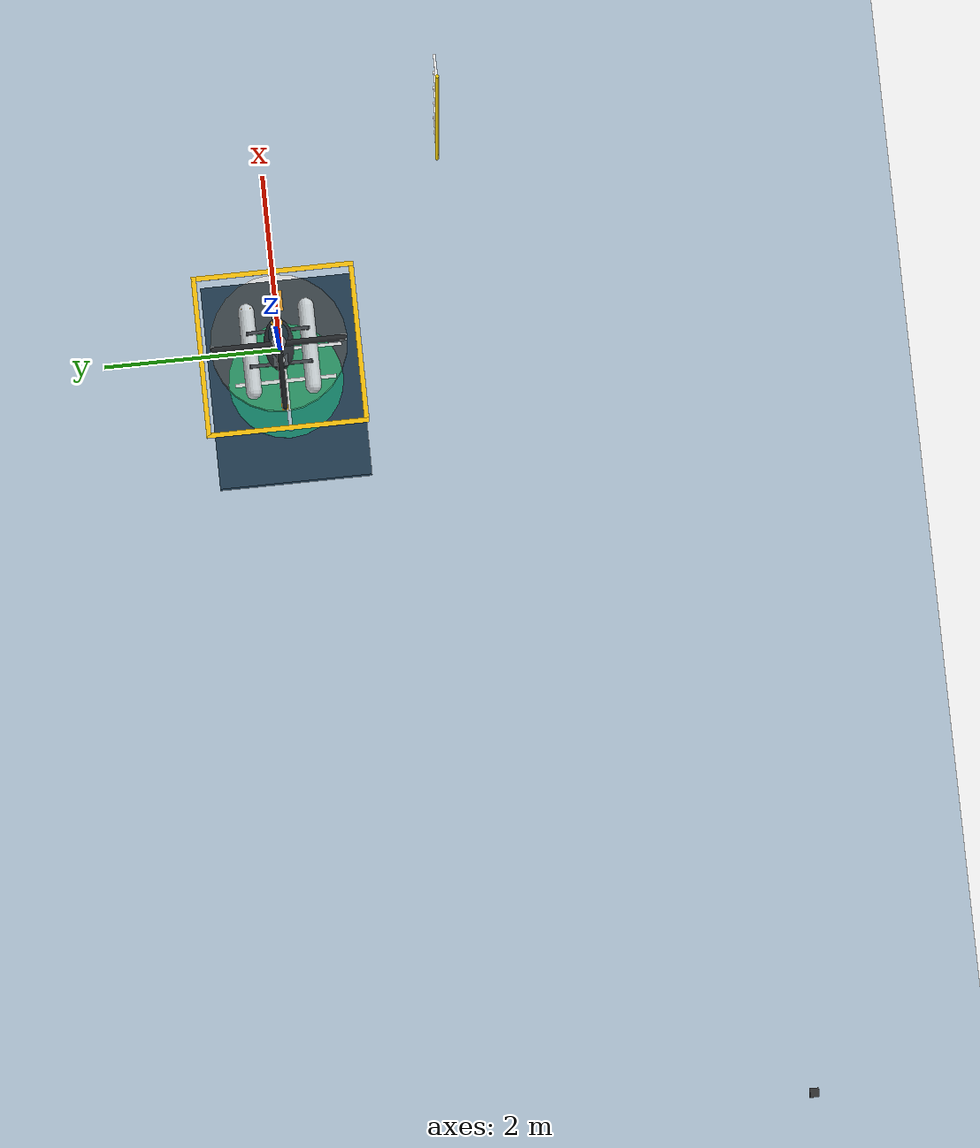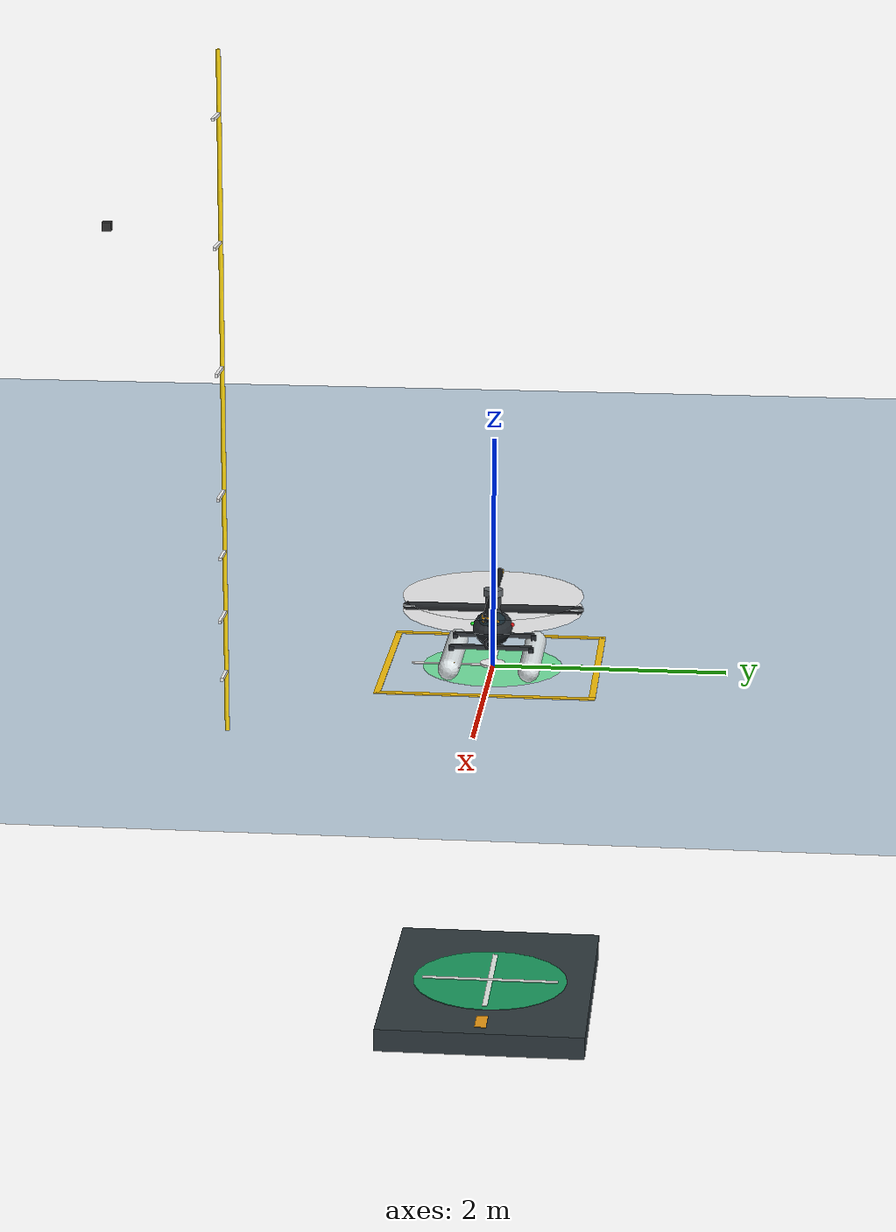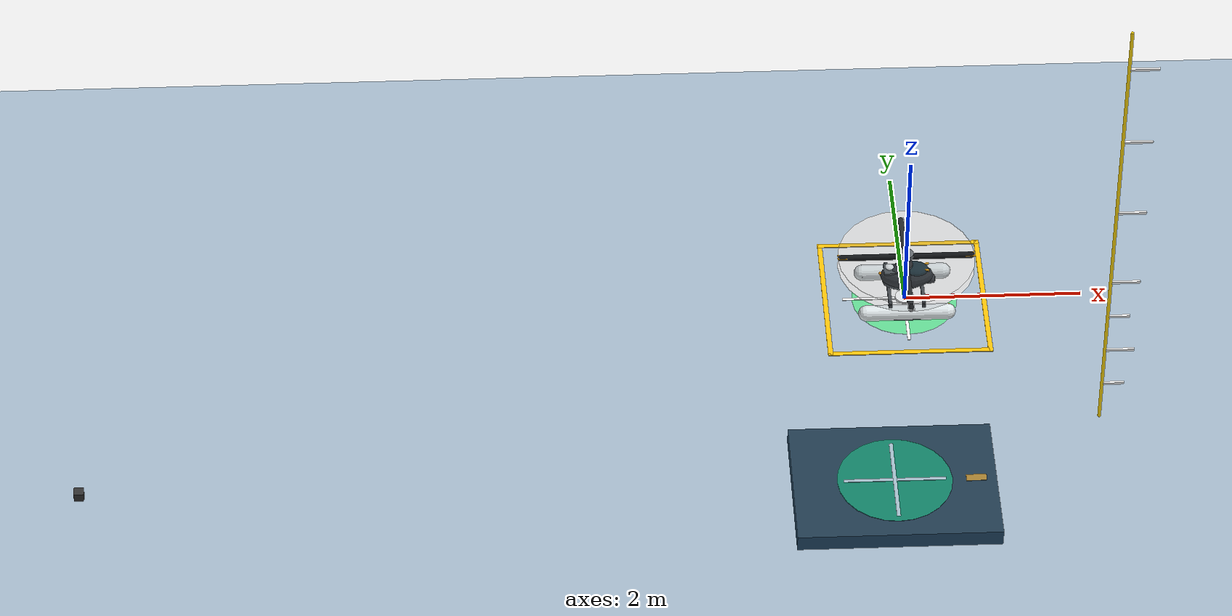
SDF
<?xml version="1.0" ?>
<sdf version="1.9">
  <world name="static_water_takeoff">
    <physics name="1ms" type="ignored">
      <max_step_size>0.001</max_step_size>
      <real_time_factor>1.0</real_time_factor>
    </physics>
    <gravity>0 0 -9.8</gravity>
    <plugin filename="gz-sim-physics-system" name="gz::sim::systems::Physics"/>
    <plugin filename="gz-sim-user-commands-system" name="gz::sim::systems::UserCommands"/>
    <plugin filename="gz-sim-scene-broadcaster-system" name="gz::sim::systems::SceneBroadcaster"/>
    <plugin filename="gz-sim-sensors-system" name="gz::sim::systems::Sensors">
      <render_engine>ogre2</render_engine>
    </plugin>
    <plugin filename="gz-sim-contact-system" name="gz::sim::systems::Contact"/>
    <plugin filename="gz-sim-apply-link-wrench-system" name="gz::sim::systems::ApplyLinkWrench"/>

    <light type="directional" name="sun">
      <pose>0 0 10 0 0 0</pose>
      <cast_shadows>true</cast_shadows>
      <diffuse>0.8 0.8 0.8 1</diffuse>
      <specular>0.2 0.2 0.2 1</specular>
      <direction>-0.5 0.1 -0.9</direction>
    </light>

    <!-- A static visual and collision plane, deliberately not a fluid simulation. -->
    <model name="static_water_surface">
      <static>true</static>
      <link name="link">
        <collision name="water_contact_plane">
          <geometry><plane><normal>0 0 1</normal><size>100 100</size></plane></geometry>
          <surface><friction><ode><mu>0.45</mu><mu2>0.45</mu2></ode></friction></surface>
        </collision>
        <visual name="water_visual">
          <geometry><plane><normal>0 0 1</normal><size>100 100</size></plane></geometry>
          <material>
            <ambient>0.02 0.16 0.28 1</ambient>
            <diffuse>0.04 0.30 0.52 1</diffuse>
            <specular>0.45 0.55 0.65 1</specular>
          </material>
        </visual>
      </link>
    </model>

    <model name="landing_target_visual">
      <static>false</static>
      <pose>0 0 0.004 0 0 0</pose>
      <link name="link">
        <gravity>false</gravity>
        <kinematic>true</kinematic>
        <inertial>
          <mass>0.01</mass>
          <inertia>
            <ixx>0.001</ixx><iyy>0.001</iyy><izz>0.001</izz>
          </inertia>
        </inertial>
        <visual name="target_disc">
          <geometry><cylinder><radius>0.60</radius><length>0.006</length></cylinder></geometry>
          <material>
            <ambient>0.0 0.65 0.25 0.55</ambient>
            <diffuse>0.0 0.85 0.35 0.55</diffuse>
          </material>
          <transparency>0.45</transparency>
        </visual>
        <visual name="target_cross_x">
          <pose>0 0 0.006 0 0 0</pose>
          <geometry><box><size>1.40 0.035 0.008</size></box></geometry>
          <material><diffuse>1.0 1.0 1.0 0.9</diffuse></material>
        </visual>
        <visual name="target_cross_y">
          <pose>0 0 0.007 0 0 0</pose>
          <geometry><box><size>0.035 1.40 0.008</size></box></geometry>
          <material><diffuse>1.0 1.0 1.0 0.9</diffuse></material>
        </visual>
      </link>
      <plugin filename="libMovingLandingTarget.so"
              name="coaxial_uav::MovingLandingTarget">
        <role>marker</role>
        <publish_status>false</publish_status>
        <platform_top_offset_m>0.20</platform_top_offset_m>
      </plugin>
    </model>

    <model name="landing_target_platform">
      <static>false</static>
      <pose>0 0 -3 0 0 0</pose>
      <link name="deck_link">
        <gravity>false</gravity>
        <kinematic>true</kinematic>
        <inertial>
          <mass>20.0</mass>
          <inertia>
            <ixx>5.47</ixx><iyy>9.67</iyy><izz>14.60</izz>
          </inertia>
        </inertial>
        <collision name="deck_collision">
          <geometry><box><size>2.40 1.80 0.20</size></box></geometry>
          <surface>
            <friction>
              <ode><mu>1.2</mu><mu2>1.2</mu2></ode>
            </friction>
            <contact><ode><kp>1000000</kp><kd>100</kd></ode></contact>
          </surface>
        </collision>
        <visual name="deck_body">
          <geometry><box><size>2.40 1.80 0.20</size></box></geometry>
          <material>
            <ambient>0.12 0.15 0.17 1</ambient>
            <diffuse>0.19 0.23 0.25 1</diffuse>
            <specular>0.10 0.10 0.10 1</specular>
          </material>
        </visual>
        <visual name="landing_pad">
          <pose>0 0 0.103 0 0 0</pose>
          <geometry><cylinder><radius>0.68</radius><length>0.006</length></cylinder></geometry>
          <material>
            <ambient>0.07 0.43 0.27 1</ambient>
            <diffuse>0.10 0.62 0.38 1</diffuse>
          </material>
        </visual>
        <visual name="deck_center_x">
          <pose>0 0 0.108 0 0 0</pose>
          <geometry><box><size>1.20 0.045 0.008</size></box></geometry>
          <material><diffuse>0.94 0.96 0.94 1</diffuse></material>
        </visual>
        <visual name="deck_center_y">
          <pose>0 0 0.109 0 0 0</pose>
          <geometry><box><size>0.045 1.20 0.008</size></box></geometry>
          <material><diffuse>0.94 0.96 0.94 1</diffuse></material>
        </visual>
        <visual name="bow_marker">
          <pose>0.96 0 0.108 0 0 0</pose>
          <geometry><box><size>0.24 0.10 0.008</size></box></geometry>
          <material><diffuse>0.95 0.62 0.08 1</diffuse></material>
        </visual>
      </link>
      <plugin filename="libMovingLandingTarget.so"
              name="coaxial_uav::MovingLandingTarget">
        <role>platform</role>
        <publish_status>true</publish_status>
        <platform_available>true</platform_available>
        <platform_top_offset_m>0.20</platform_top_offset_m>
        <platform_hidden_z_m>-3.0</platform_hidden_z_m>
        <platform_half_length_m>1.20</platform_half_length_m>
        <platform_half_width_m>0.90</platform_half_width_m>
        <platform_thickness_m>0.20</platform_thickness_m>
        <platform_edge_margin_m>0.03</platform_edge_margin_m>
        <contact_min_clearance_m>-0.08</contact_min_clearance_m>
        <contact_max_clearance_m>0.05</contact_max_clearance_m>
        <initial_overlap_min_clearance_m>-0.08</initial_overlap_min_clearance_m>
      </plugin>
    </model>

    <!-- Visual-only world origin reference; it has no collision or contact effect. -->
    <model name="world_origin_marker">
      <static>true</static>
      <pose>0 0 0.014 0 0 0</pose>
      <link name="link">
        <visual name="origin_frame_north">
          <pose>0 0.90 0 0 0 0</pose>
          <geometry><box><size>1.85 0.055 0.010</size></box></geometry>
          <material><ambient>1.0 0.68 0.02 1</ambient><diffuse>1.0 0.78 0.04 1</diffuse><emissive>0.18 0.08 0 1</emissive></material>
        </visual>
        <visual name="origin_frame_south">
          <pose>0 -0.90 0 0 0 0</pose>
          <geometry><box><size>1.85 0.055 0.010</size></box></geometry>
          <material><ambient>1.0 0.68 0.02 1</ambient><diffuse>1.0 0.78 0.04 1</diffuse><emissive>0.18 0.08 0 1</emissive></material>
        </visual>
        <visual name="origin_frame_east">
          <pose>0.90 0 0 0 0 0</pose>
          <geometry><box><size>0.055 1.85 0.010</size></box></geometry>
          <material><ambient>1.0 0.68 0.02 1</ambient><diffuse>1.0 0.78 0.04 1</diffuse><emissive>0.18 0.08 0 1</emissive></material>
        </visual>
        <visual name="origin_frame_west">
          <pose>-0.90 0 0 0 0 0</pose>
          <geometry><box><size>0.055 1.85 0.010</size></box></geometry>
          <material><ambient>1.0 0.68 0.02 1</ambient><diffuse>1.0 0.78 0.04 1</diffuse><emissive>0.18 0.08 0 1</emissive></material>
        </visual>
        <visual name="origin_x_axis">
          <pose>0.48 0 0.004 0 0 0</pose>
          <geometry><box><size>0.96 0.045 0.014</size></box></geometry>
          <material><ambient>0.80 0.02 0.02 1</ambient><diffuse>1.0 0.04 0.04 1</diffuse><emissive>0.28 0 0 1</emissive></material>
        </visual>
        <visual name="origin_y_axis">
          <pose>0 0.48 0.005 0 0 0</pose>
          <geometry><box><size>0.045 0.96 0.014</size></box></geometry>
          <material><ambient>0.02 0.65 0.06 1</ambient><diffuse>0.03 1.0 0.10 1</diffuse><emissive>0 0.24 0.02 1</emissive></material>
        </visual>
        <visual name="origin_center">
          <pose>0 0 0.010 0 0 0</pose>
          <geometry><cylinder><radius>0.105</radius><length>0.022</length></cylinder></geometry>
          <material><ambient>0.95 0.95 0.95 1</ambient><diffuse>1.0 1.0 1.0 1</diffuse><emissive>0.20 0.20 0.20 1</emissive></material>
        </visual>
      </link>
    </model>

    <model name="height_reference_visual">
      <static>true</static>
      <pose>2.0 -2.0 0 0 0 0</pose>
      <link name="link">
        <visual name="pole">
          <pose>0 0 2.75 0 0 0</pose>
          <geometry><cylinder><radius>0.018</radius><length>5.50</length></cylinder></geometry>
          <material><diffuse>1.0 0.85 0.05 1</diffuse></material>
        </visual>
        <visual name="tick_0_5m">
          <pose>0.12 0 0.5 0 0 0</pose>
          <geometry><box><size>0.24 0.025 0.025</size></box></geometry>
          <material><diffuse>1.0 1.0 1.0 1</diffuse></material>
        </visual>
        <visual name="tick_1_0m">
          <pose>0.16 0 1.0 0 0 0</pose>
          <geometry><box><size>0.32 0.025 0.025</size></box></geometry>
          <material><diffuse>1.0 1.0 1.0 1</diffuse></material>
        </visual>
        <visual name="tick_1_5m">
          <pose>0.12 0 1.5 0 0 0</pose>
          <geometry><box><size>0.24 0.025 0.025</size></box></geometry>
          <material><diffuse>1.0 1.0 1.0 1</diffuse></material>
        </visual>
        <visual name="tick_2_0m">
          <pose>0.16 0 2.0 0 0 0</pose>
          <geometry><box><size>0.32 0.025 0.025</size></box></geometry>
          <material><diffuse>1.0 1.0 1.0 1</diffuse></material>
        </visual>
        <visual name="tick_3_0m">
          <pose>0.16 0 3.0 0 0 0</pose>
          <geometry><box><size>0.32 0.025 0.025</size></box></geometry>
          <material><diffuse>1.0 1.0 1.0 1</diffuse></material>
        </visual>
        <visual name="tick_4_0m">
          <pose>0.16 0 4.0 0 0 0</pose>
          <geometry><box><size>0.32 0.025 0.025</size></box></geometry>
          <material><diffuse>1.0 1.0 1.0 1</diffuse></material>
        </visual>
        <visual name="tick_5_0m">
          <pose>0.16 0 5.0 0 0 0</pose>
          <geometry><box><size>0.32 0.025 0.025</size></box></geometry>
          <material><diffuse>1.0 1.0 1.0 1</diffuse></material>
        </visual>
      </link>
    </model>

    <include>
      <uri>model://coaxial_uav</uri>
      <pose>0 0 0.34 0 0 0</pose>
      <plugin filename="gz-sim-pose-publisher-system" name="gz::sim::systems::PosePublisher">
        <publish_model_pose>true</publish_model_pose>
        <publish_link_pose>false</publish_link_pose>
        <use_pose_vector_msg>false</use_pose_vector_msg>
        <static_publisher>false</static_publisher>
        <update_frequency>50</update_frequency>
      </plugin>
      <plugin filename="gz-sim-joint-state-publisher-system" name="gz::sim::systems::JointStatePublisher"/>
      <plugin filename="libCoaxialPidController.so" name="coaxial_uav::CoaxialPidController">
        <enabled>false</enabled>
        <link_name>base_link</link_name>
        <upper_joint_name>upper_rotor_joint</upper_joint_name>
        <lower_joint_name>lower_rotor_joint</lower_joint_name>
        <mass_kg>8.2</mass_kg>
        <gravity_m_s2>9.8</gravity_m_s2>
        <thrust_coeff>2.1610671e-3</thrust_coeff>
        <rotor_interference_enabled>true</rotor_interference_enabled>
        <coaxial_max_thrust_loss>0.06</coaxial_max_thrust_loss>
        <target_z_m>0.8</target_z_m>
        <max_omega_rad_s>150.0</max_omega_rad_s>
        <attitude_setpoint_rate_limit_rad_s>0.75</attitude_setpoint_rate_limit_rad_s>
        <velocity_control_enabled>false</velocity_control_enabled>
        <target_vx_m_s>0.0</target_vx_m_s>
        <target_vy_m_s>0.0</target_vy_m_s>
        <velocity_tilt_limit_rad>0.261799</velocity_tilt_limit_rad>
        <velocity_accel_limit_m_s2>2.2</velocity_accel_limit_m_s2>
        <velocity_x_kp>2.8</velocity_x_kp>
        <velocity_x_ki>0.15</velocity_x_ki>
        <velocity_x_limit>2.2</velocity_x_limit>
        <velocity_x_integral_limit>1.0</velocity_x_integral_limit>
        <velocity_y_kp>2.8</velocity_y_kp>
        <velocity_y_ki>0.15</velocity_y_ki>
        <velocity_y_limit>2.2</velocity_y_limit>
        <velocity_y_integral_limit>1.0</velocity_y_integral_limit>
        <position_control_enabled>false</position_control_enabled>
        <target_x_m>0.0</target_x_m>
        <target_y_m>0.0</target_y_m>
        <position_velocity_limit_m_s>2.5</position_velocity_limit_m_s>
        <position_x_kp>2.5</position_x_kp>
        <position_x_ki>0.0</position_x_ki>
        <position_x_kd>0.95</position_x_kd>
        <position_x_limit>2.5</position_x_limit>
        <position_x_integral_limit>2.0</position_x_integral_limit>
        <position_y_kp>2.5</position_y_kp>
        <position_y_ki>0.0</position_y_ki>
        <position_y_kd>0.95</position_y_kd>
        <position_y_limit>2.5</position_y_limit>
        <position_y_integral_limit>2.0</position_y_integral_limit>
        <height_kp>45.0</height_kp>
        <height_ki>0.0</height_ki>
        <height_kd>35.0</height_kd>
        <height_limit>30.0</height_limit>
        <height_integral_limit>0.5</height_integral_limit>
        <roll_kp>193.3</roll_kp>
        <roll_kd>8.61</roll_kd>
        <roll_limit>2.5</roll_limit>
        <pitch_kp>351.3</pitch_kp>
        <pitch_kd>15.65</pitch_kd>
        <pitch_limit>2.7</pitch_limit>
        <yaw_kp>296.1</yaw_kp>
        <yaw_kd>13.19</yaw_kd>
        <yaw_limit>0.7</yaw_limit>
        <yaw_large_signal_kp>20.0</yaw_large_signal_kp>
        <yaw_large_signal_kd>3.0</yaw_large_signal_kd>
        <yaw_schedule_start_rad>0.02</yaw_schedule_start_rad>
        <yaw_schedule_end_rad>0.08</yaw_schedule_end_rad>
        <nonidealities_enabled>false</nonidealities_enabled>
        <attitude_noise_std_rad>0.000349066</attitude_noise_std_rad>
        <gyro_noise_std_rad_s>0.00174533</gyro_noise_std_rad_s>
        <attitude_bias_std_rad>0.000872665</attitude_bias_std_rad>
        <gyro_bias_std_rad_s>0.000872665</gyro_bias_std_rad_s>
        <position_noise_std_m>0.003</position_noise_std_m>
        <velocity_noise_std_m_s>0.01</velocity_noise_std_m_s>
        <control_delay_s>0.015</control_delay_s>
        <motor_time_constant_s>0.08</motor_time_constant_s>
        <motor_rate_limit_rad_s2>500.0</motor_rate_limit_rad_s2>
        <motor_effectiveness>0.98</motor_effectiveness>
        <nonidealities_seed>20260726</nonidealities_seed>
      </plugin>
      <plugin filename="libNearSurfaceDisturbance.so" name="coaxial_uav::NearSurfaceDisturbance">
        <enabled>false</enabled>
        <preset>off</preset>
        <link_name>base_link</link_name>
        <upper_joint_name>upper_rotor_joint</upper_joint_name>
        <lower_joint_name>lower_rotor_joint</lower_joint_name>
        <water_z_m>0.0</water_z_m>
        <rotor_radius_m>0.775</rotor_radius_m>
        <rotor_plane_offset_m>0.235</rotor_plane_offset_m>
        <thrust_coeff>2.1610671e-3</thrust_coeff>
        <full_effect_height_ratio>0.30</full_effect_height_ratio>
        <zero_effect_height_ratio>1.50</zero_effect_height_ratio>
        <minimum_rotor_omega_rad_s>20.0</minimum_rotor_omega_rad_s>
      </plugin>
      <plugin filename="libAerodynamicEnvironment.so" name="coaxial_uav::AerodynamicEnvironment">
        <enabled>false</enabled>
        <link_name>base_link</link_name>
        <upper_joint_name>upper_rotor_joint</upper_joint_name>
        <lower_joint_name>lower_rotor_joint</lower_joint_name>
        <air_density_kg_m3>1.225</air_density_kg_m3>
        <drag_area_x_m2>0.12</drag_area_x_m2>
        <drag_area_y_m2>0.18</drag_area_y_m2>
        <drag_area_z_m2>0.10</drag_area_z_m2>
        <angular_damping_roll_nm_s>0.12</angular_damping_roll_nm_s>
        <angular_damping_pitch_nm_s>0.18</angular_damping_pitch_nm_s>
        <angular_damping_yaw_nm_s>0.10</angular_damping_yaw_nm_s>
        <angular_damping_roll_quadratic>0.03</angular_damping_roll_quadratic>
        <angular_damping_pitch_quadratic>0.04</angular_damping_pitch_quadratic>
        <angular_damping_yaw_quadratic>0.02</angular_damping_yaw_quadratic>
        <nominal_mass_kg>8.2</nominal_mass_kg>
        <nominal_ixx>0.19588</nominal_ixx>
        <nominal_iyy>0.35588</nominal_iyy>
        <nominal_izz>0.30</nominal_izz>
        <thrust_coeff>2.1610671e-3</thrust_coeff>
      </plugin>
      <plugin filename="libCoaxialWaterInteraction.so" name="coaxial_uav::CoaxialWaterInteraction">
        <rotor_interference_enabled>true</rotor_interference_enabled>
        <hydrodynamics_enabled>true</hydrodynamics_enabled>
        <vehicle_mass_kg>8.2</vehicle_mass_kg>
        <link_name>base_link</link_name>
        <upper_joint_name>upper_rotor_joint</upper_joint_name>
        <lower_joint_name>lower_rotor_joint</lower_joint_name>
        <thrust_coeff>2.1610671e-3</thrust_coeff>
        <moment_constant>0.06478</moment_constant>
        <minimum_rotor_omega_rad_s>20.0</minimum_rotor_omega_rad_s>
        <coaxial_max_thrust_loss>0.06</coaxial_max_thrust_loss>
        <coaxial_inflow_time_constant_s>0.12</coaxial_inflow_time_constant_s>
        <water_density_kg_m3>997.0</water_density_kg_m3>
        <water_level_z_m>0.0</water_level_z_m>
        <float_virtual_draft_m>0.055</float_virtual_draft_m>
        <float_radius_m>0.09</float_radius_m>
        <float_length_m>1.10</float_length_m>
        <float_lateral_offset_m>0.34</float_lateral_offset_m>
        <float_vertical_offset_m>-0.24</float_vertical_offset_m>
        <float_count>2</float_count>
        <water_linear_drag_x_n_s_m>4.0</water_linear_drag_x_n_s_m>
        <water_linear_drag_y_n_s_m>35.0</water_linear_drag_y_n_s_m>
        <water_linear_drag_z_n_s_m>80.0</water_linear_drag_z_n_s_m>
        <water_quadratic_drag_x>0.25</water_quadratic_drag_x>
        <water_quadratic_drag_y>1.0</water_quadratic_drag_y>
        <water_quadratic_drag_z>1.1</water_quadratic_drag_z>
        <water_slamming_gain_n_s_m>35.0</water_slamming_gain_n_s_m>
        <max_hydrodynamic_force_n>220.0</max_hydrodynamic_force_n>
      </plugin>
      <plugin filename="gz-sim-multicopter-motor-model-system" name="gz::sim::systems::MulticopterMotorModel">
        <robotNamespace>coaxial_uav</robotNamespace>
        <jointName>upper_rotor_joint</jointName>
        <linkName>upper_rotor_link</linkName>
        <turningDirection>cw</turningDirection>
        <timeConstantUp>0.075</timeConstantUp>
        <timeConstantDown>0.075</timeConstantDown>
        <maxRotVelocity>167.0</maxRotVelocity>
        <motorConstant>2.1610671e-3</motorConstant>
        <momentConstant>0.06478</momentConstant>
        <commandSubTopic>gazebo/command/motor_speed</commandSubTopic>
        <actuator_number>0</actuator_number>
        <rotorDragCoefficient>0.0</rotorDragCoefficient>
        <rollingMomentCoefficient>0.0</rollingMomentCoefficient>
        <motorSpeedPubTopic>motor_speed/upper</motorSpeedPubTopic>
        <rotorVelocitySlowdownSim>1</rotorVelocitySlowdownSim>
        <motorType>velocity</motorType>
      </plugin>
      <plugin filename="gz-sim-multicopter-motor-model-system" name="gz::sim::systems::MulticopterMotorModel">
        <robotNamespace>coaxial_uav</robotNamespace>
        <jointName>lower_rotor_joint</jointName>
        <linkName>lower_rotor_link</linkName>
        <turningDirection>ccw</turningDirection>
        <timeConstantUp>0.075</timeConstantUp>
        <timeConstantDown>0.075</timeConstantDown>
        <maxRotVelocity>167.0</maxRotVelocity>
        <motorConstant>2.1610671e-3</motorConstant>
        <momentConstant>0.06478</momentConstant>
        <commandSubTopic>gazebo/command/motor_speed</commandSubTopic>
        <actuator_number>1</actuator_number>
        <rotorDragCoefficient>0.0</rotorDragCoefficient>
        <rollingMomentCoefficient>0.0</rollingMomentCoefficient>
        <motorSpeedPubTopic>motor_speed/lower</motorSpeedPubTopic>
        <rotorVelocitySlowdownSim>1</rotorVelocitySlowdownSim>
        <motorType>velocity</motorType>
      </plugin>
    </include>
  <!-- VIDEO_ONLY_BLOCK_BEGIN: camera recorder; do not edit beyond this marker -->
    <!-- 录像相机：固定在起降区（约 -5,-5）一侧，俯视水面着陆区 -->
    <model name="recording_camera">
      <static>true</static>
      <pose>-9 -5 2.2 0 0 0</pose>
      <link name="link">
        <visual name="cam_box">
          <geometry><box><size>0.1 0.1 0.1</size></box></geometry>
          <material><diffuse>0.2 0.2 0.2 1</diffuse></material>
        </visual>
        <sensor type="camera" name="cam">
          <always_on>1</always_on>
          <update_rate>15</update_rate>
          <visualize>false</visualize>
          <topic>recording_camera/image</topic>
          <camera>
            <horizontal_fov>1.4</horizontal_fov>
            <image><width>640</width><height>480</height></image>
            <clip><near>0.1</near><far>100</far></clip>
          </camera>
          <plugin filename="gz-sim-camera-video-recorder-system" name="gz::sim::systems::CameraVideoRecorder">
            <service>recording_camera/record_video</service>
            <bitrate>2000000</bitrate>
            <fps>12</fps>
          </plugin>
        </sensor>
      </link>
    </model>
  <!-- VIDEO_ONLY_BLOCK_END -->
  </world>
</sdf>

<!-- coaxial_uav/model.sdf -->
<sdf version="1.9">
  <model name="coaxial_uav">
    <self_collide>false</self_collide>

    <link name="base_link">
      <inertial>
        <mass>8.1</mass>
        <inertia>
          <ixx>0.18</ixx>
          <iyy>0.34</iyy>
          <izz>0.28</izz>
          <ixy>0</ixy>
          <ixz>0</ixz>
          <iyz>0</iyz>
        </inertia>
      </inertial>

      <collision name="fuselage_collision">
        <geometry>
          <box><size>0.50 0.28 0.18</size></box>
        </geometry>
      </collision>
      <!-- Visual-only airframe. Collision and inertia stay deliberately simple. -->
      <visual name="fuselage_shell">
        <pose>0.015 0 0.015 0 0 0</pose>
        <geometry><ellipsoid><radii>0.30 0.17 0.13</radii></ellipsoid></geometry>
        <material>
          <ambient>0.055 0.065 0.075 1</ambient>
          <diffuse>0.10 0.12 0.14 1</diffuse>
          <specular>0.32 0.34 0.36 1</specular>
        </material>
      </visual>
      <visual name="lower_equipment_pod">
        <pose>-0.025 0 -0.065 0 0 0</pose>
        <geometry><ellipsoid><radii>0.235 0.135 0.080</radii></ellipsoid></geometry>
        <material>
          <ambient>0.12 0.14 0.16 1</ambient>
          <diffuse>0.19 0.22 0.24 1</diffuse>
          <specular>0.26 0.28 0.30 1</specular>
        </material>
      </visual>
      <visual name="canopy">
        <pose>0.105 0 0.105 0 0 0</pose>
        <geometry><ellipsoid><radii>0.155 0.115 0.062</radii></ellipsoid></geometry>
        <material>
          <ambient>0.015 0.055 0.075 1</ambient>
          <diffuse>0.025 0.12 0.16 1</diffuse>
          <specular>0.70 0.78 0.82 1</specular>
        </material>
      </visual>
      <visual name="rear_service_deck">
        <pose>-0.175 0 0.105 0 0 0</pose>
        <geometry><box><size>0.145 0.165 0.030</size></box></geometry>
        <material>
          <ambient>0.16 0.18 0.19 1</ambient>
          <diffuse>0.25 0.28 0.30 1</diffuse>
          <specular>0.20 0.22 0.24 1</specular>
        </material>
      </visual>

      <!-- Coaxial mast, motor fairing and direction markings. -->
      <visual name="mast_fairing">
        <pose>0 0 0.170 0 0 0</pose>
        <geometry><cylinder><radius>0.068</radius><length>0.250</length></cylinder></geometry>
        <material>
          <ambient>0.11 0.12 0.13 1</ambient>
          <diffuse>0.19 0.20 0.22 1</diffuse>
          <specular>0.42 0.44 0.46 1</specular>
        </material>
      </visual>
      <visual name="rotor_mast">
        <pose>0 0 0.180 0 0 0</pose>
        <geometry><cylinder><radius>0.018</radius><length>0.360</length></cylinder></geometry>
        <material>
          <ambient>0.24 0.25 0.26 1</ambient>
          <diffuse>0.42 0.44 0.46 1</diffuse>
          <specular>0.75 0.75 0.75 1</specular>
        </material>
      </visual>
      <visual name="nose_chevron_left">
        <pose>0.205 0.040 0.132 0 0 0.35</pose>
        <geometry><box><size>0.125 0.022 0.012</size></box></geometry>
        <material><ambient>0.95 0.58 0.02 1</ambient><diffuse>1.0 0.68 0.04 1</diffuse></material>
      </visual>
      <visual name="nose_chevron_right">
        <pose>0.205 -0.040 0.132 0 0 -0.35</pose>
        <geometry><box><size>0.125 0.022 0.012</size></box></geometry>
        <material><ambient>0.95 0.58 0.02 1</ambient><diffuse>1.0 0.68 0.04 1</diffuse></material>
      </visual>

      <!-- GNSS, forward camera and navigation lights make orientation readable. -->
      <visual name="gnss_antenna">
        <pose>-0.185 0 0.148 0 0 0</pose>
        <geometry><ellipsoid><radii>0.050 0.050 0.024</radii></ellipsoid></geometry>
        <material><ambient>0.72 0.74 0.75 1</ambient><diffuse>0.88 0.90 0.91 1</diffuse><specular>0.25 0.25 0.25 1</specular></material>
      </visual>
      <visual name="camera_housing">
        <pose>0.292 0 -0.050 0 1.5708 0</pose>
        <geometry><cylinder><radius>0.050</radius><length>0.074</length></cylinder></geometry>
        <material><ambient>0.08 0.09 0.10 1</ambient><diffuse>0.14 0.15 0.17 1</diffuse><specular>0.36 0.38 0.40 1</specular></material>
      </visual>
      <visual name="camera_lens">
        <pose>0.332 0 -0.050 0 1.5708 0</pose>
        <geometry><cylinder><radius>0.031</radius><length>0.010</length></cylinder></geometry>
        <material><ambient>0.005 0.018 0.025 1</ambient><diffuse>0.01 0.035 0.05 1</diffuse><specular>0.80 0.88 0.92 1</specular></material>
      </visual>
      <visual name="port_navigation_light">
        <pose>0.035 0.171 0.045 0 0 0</pose>
        <geometry><sphere><radius>0.018</radius></sphere></geometry>
        <material><ambient>0.75 0.01 0.01 1</ambient><diffuse>1.0 0.02 0.02 1</diffuse><emissive>0.65 0.0 0.0 1</emissive></material>
      </visual>
      <visual name="starboard_navigation_light">
        <pose>0.035 -0.171 0.045 0 0 0</pose>
        <geometry><sphere><radius>0.018</radius></sphere></geometry>
        <material><ambient>0.01 0.65 0.05 1</ambient><diffuse>0.02 1.0 0.08 1</diffuse><emissive>0.0 0.55 0.02 1</emissive></material>
      </visual>
      <visual name="rear_status_light">
        <pose>-0.286 0 0.055 0 0 0</pose>
        <geometry><sphere><radius>0.015</radius></sphere></geometry>
        <material><ambient>0.95 0.45 0.0 1</ambient><diffuse>1.0 0.62 0.02 1</diffuse><emissive>0.55 0.20 0.0 1</emissive></material>
      </visual>

      <!-- Two cross beams and four short pylons connect the watertight floats. -->
      <visual name="front_float_crossbeam">
        <pose>0.190 0 -0.115 0 0 0</pose>
        <geometry><box><size>0.038 0.690 0.035</size></box></geometry>
        <material><ambient>0.12 0.13 0.14 1</ambient><diffuse>0.21 0.23 0.25 1</diffuse><specular>0.35 0.36 0.37 1</specular></material>
      </visual>
      <visual name="rear_float_crossbeam">
        <pose>-0.190 0 -0.115 0 0 0</pose>
        <geometry><box><size>0.038 0.690 0.035</size></box></geometry>
        <material><ambient>0.12 0.13 0.14 1</ambient><diffuse>0.21 0.23 0.25 1</diffuse><specular>0.35 0.36 0.37 1</specular></material>
      </visual>
      <visual name="front_left_float_pylon">
        <pose>0.190 0.340 -0.160 0 0 0</pose>
        <geometry><box><size>0.042 0.042 0.100</size></box></geometry>
        <material><diffuse>0.16 0.18 0.20 1</diffuse><specular>0.30 0.32 0.34 1</specular></material>
      </visual>
      <visual name="front_right_float_pylon">
        <pose>0.190 -0.340 -0.160 0 0 0</pose>
        <geometry><box><size>0.042 0.042 0.100</size></box></geometry>
        <material><diffuse>0.16 0.18 0.20 1</diffuse><specular>0.30 0.32 0.34 1</specular></material>
      </visual>
      <visual name="rear_left_float_pylon">
        <pose>-0.190 0.340 -0.160 0 0 0</pose>
        <geometry><box><size>0.042 0.042 0.100</size></box></geometry>
        <material><diffuse>0.16 0.18 0.20 1</diffuse><specular>0.30 0.32 0.34 1</specular></material>
      </visual>
      <visual name="rear_right_float_pylon">
        <pose>-0.190 -0.340 -0.160 0 0 0</pose>
        <geometry><box><size>0.042 0.042 0.100</size></box></geometry>
        <material><diffuse>0.16 0.18 0.20 1</diffuse><specular>0.30 0.32 0.34 1</specular></material>
      </visual>

      <!-- Simplified twin floats: collision/contact only, not a fluid model. -->
      <collision name="float_left_collision">
        <pose>0 0.34 -0.24 0 1.5708 0</pose>
        <geometry><cylinder><radius>0.09</radius><length>1.10</length></cylinder></geometry>
        <surface><friction><ode><mu>0.7</mu><mu2>0.7</mu2></ode></friction></surface>
      </collision>
      <visual name="float_left_shell">
        <pose>0 0.34 -0.24 0 1.5708 0</pose>
        <geometry><capsule><radius>0.09</radius><length>0.92</length></capsule></geometry>
        <material><ambient>0.67 0.70 0.72 1</ambient><diffuse>0.88 0.91 0.92 1</diffuse><specular>0.48 0.50 0.52 1</specular></material>
      </visual>
      <visual name="float_left_keel">
        <pose>0 0.34 -0.283 0 0 0</pose>
        <geometry><ellipsoid><radii>0.48 0.082 0.038</radii></ellipsoid></geometry>
        <material><ambient>0.12 0.15 0.17 1</ambient><diffuse>0.20 0.25 0.28 1</diffuse><specular>0.24 0.26 0.28 1</specular></material>
      </visual>
      <visual name="float_left_bow_mark">
        <pose>0.425 0.34 -0.180 0 0 0</pose>
        <geometry><box><size>0.115 0.105 0.018</size></box></geometry>
        <material><ambient>0.95 0.58 0.02 1</ambient><diffuse>1.0 0.68 0.04 1</diffuse></material>
      </visual>
      <collision name="float_right_collision">
        <pose>0 -0.34 -0.24 0 1.5708 0</pose>
        <geometry><cylinder><radius>0.09</radius><length>1.10</length></cylinder></geometry>
        <surface><friction><ode><mu>0.7</mu><mu2>0.7</mu2></ode></friction></surface>
      </collision>
      <visual name="float_right_shell">
        <pose>0 -0.34 -0.24 0 1.5708 0</pose>
        <geometry><capsule><radius>0.09</radius><length>0.92</length></capsule></geometry>
        <material><ambient>0.67 0.70 0.72 1</ambient><diffuse>0.88 0.91 0.92 1</diffuse><specular>0.48 0.50 0.52 1</specular></material>
      </visual>
      <visual name="float_right_keel">
        <pose>0 -0.34 -0.283 0 0 0</pose>
        <geometry><ellipsoid><radii>0.48 0.082 0.038</radii></ellipsoid></geometry>
        <material><ambient>0.12 0.15 0.17 1</ambient><diffuse>0.20 0.25 0.28 1</diffuse><specular>0.24 0.26 0.28 1</specular></material>
      </visual>
      <visual name="float_right_bow_mark">
        <pose>0.425 -0.34 -0.180 0 0 0</pose>
        <geometry><box><size>0.115 0.105 0.018</size></box></geometry>
        <material><ambient>0.95 0.58 0.02 1</ambient><diffuse>1.0 0.68 0.04 1</diffuse></material>
      </visual>

      <sensor name="imu" type="imu">
        <always_on>1</always_on>
        <update_rate>100</update_rate>
        <topic>imu</topic>
      </sensor>
    </link>

    <link name="upper_rotor_link">
      <pose>0 0 0.295 0 0 0</pose>
      <inertial>
        <mass>0.05</mass>
        <inertia>
          <ixx>0.005</ixx><iyy>0.005</iyy><izz>0.01</izz>
        </inertia>
      </inertial>
      <visual name="upper_rotor_blur">
        <geometry><cylinder><radius>0.775</radius><length>0.004</length></cylinder></geometry>
        <material><ambient>0.32 0.34 0.36 0.10</ambient><diffuse>0.48 0.50 0.52 0.10</diffuse></material>
        <transparency>0.90</transparency>
        <cast_shadows>false</cast_shadows>
      </visual>
      <visual name="upper_blade_forward">
        <pose>0.405 0 0.006 0 1.5708 0</pose>
        <geometry><capsule><radius>0.035</radius><length>0.670</length></capsule></geometry>
        <material><ambient>0.035 0.040 0.045 1</ambient><diffuse>0.075 0.085 0.095 1</diffuse><specular>0.28 0.30 0.32 1</specular></material>
      </visual>
      <visual name="upper_blade_aft">
        <pose>-0.405 0 0.006 0 1.5708 0</pose>
        <geometry><capsule><radius>0.035</radius><length>0.670</length></capsule></geometry>
        <material><ambient>0.035 0.040 0.045 1</ambient><diffuse>0.075 0.085 0.095 1</diffuse><specular>0.28 0.30 0.32 1</specular></material>
      </visual>
      <visual name="upper_tip_forward">
        <pose>0.720 0 0.012 0 0 0</pose>
        <geometry><box><size>0.105 0.072 0.014</size></box></geometry>
        <material><ambient>0.95 0.58 0.02 1</ambient><diffuse>1.0 0.68 0.04 1</diffuse></material>
      </visual>
      <visual name="upper_tip_aft">
        <pose>-0.720 0 0.012 0 0 0</pose>
        <geometry><box><size>0.105 0.072 0.014</size></box></geometry>
        <material><ambient>0.95 0.58 0.02 1</ambient><diffuse>1.0 0.68 0.04 1</diffuse></material>
      </visual>
      <visual name="upper_rotor_hub">
        <pose>0 0 0.025 0 0 0</pose>
        <geometry><cylinder><radius>0.082</radius><length>0.060</length></cylinder></geometry>
        <material><ambient>0.22 0.23 0.24 1</ambient><diffuse>0.40 0.42 0.44 1</diffuse><specular>0.72 0.74 0.76 1</specular></material>
      </visual>
    </link>
    <joint name="upper_rotor_joint" type="revolute">
      <parent>base_link</parent>
      <child>upper_rotor_link</child>
      <axis>
        <xyz>0 0 1</xyz>
        <limit><lower>-1e16</lower><upper>1e16</upper></limit>
        <dynamics><damping>0.0001</damping></dynamics>
      </axis>
    </joint>

    <link name="lower_rotor_link">
      <pose>0 0 0.175 0 0 0</pose>
      <inertial>
        <mass>0.05</mass>
        <inertia>
          <ixx>0.005</ixx><iyy>0.005</iyy><izz>0.01</izz>
        </inertia>
      </inertial>
      <visual name="lower_rotor_blur">
        <geometry><cylinder><radius>0.775</radius><length>0.004</length></cylinder></geometry>
        <material><ambient>0.32 0.34 0.36 0.08</ambient><diffuse>0.48 0.50 0.52 0.08</diffuse></material>
        <transparency>0.92</transparency>
        <cast_shadows>false</cast_shadows>
      </visual>
      <visual name="lower_blade_port">
        <pose>0 0.405 0.006 1.5708 0 0</pose>
        <geometry><capsule><radius>0.035</radius><length>0.670</length></capsule></geometry>
        <material><ambient>0.035 0.040 0.045 1</ambient><diffuse>0.075 0.085 0.095 1</diffuse><specular>0.28 0.30 0.32 1</specular></material>
      </visual>
      <visual name="lower_blade_starboard">
        <pose>0 -0.405 0.006 1.5708 0 0</pose>
        <geometry><capsule><radius>0.035</radius><length>0.670</length></capsule></geometry>
        <material><ambient>0.035 0.040 0.045 1</ambient><diffuse>0.075 0.085 0.095 1</diffuse><specular>0.28 0.30 0.32 1</specular></material>
      </visual>
      <visual name="lower_tip_port">
        <pose>0 0.720 0.012 0 0 0</pose>
        <geometry><box><size>0.072 0.105 0.014</size></box></geometry>
        <material><ambient>0.72 0.74 0.75 1</ambient><diffuse>0.90 0.92 0.93 1</diffuse></material>
      </visual>
      <visual name="lower_tip_starboard">
        <pose>0 -0.720 0.012 0 0 0</pose>
        <geometry><box><size>0.072 0.105 0.014</size></box></geometry>
        <material><ambient>0.72 0.74 0.75 1</ambient><diffuse>0.90 0.92 0.93 1</diffuse></material>
      </visual>
      <visual name="lower_rotor_hub">
        <pose>0 0 -0.018 0 0 0</pose>
        <geometry><cylinder><radius>0.076</radius><length>0.050</length></cylinder></geometry>
        <material><ambient>0.15 0.16 0.17 1</ambient><diffuse>0.27 0.29 0.31 1</diffuse><specular>0.58 0.60 0.62 1</specular></material>
      </visual>
    </link>
    <joint name="lower_rotor_joint" type="revolute">
      <parent>base_link</parent>
      <child>lower_rotor_link</child>
      <axis>
        <xyz>0 0 1</xyz>
        <limit><lower>-1e16</lower><upper>1e16</upper></limit>
        <dynamics><damping>0.0001</damping></dynamics>
      </axis>
    </joint>
  </model>
</sdf>
